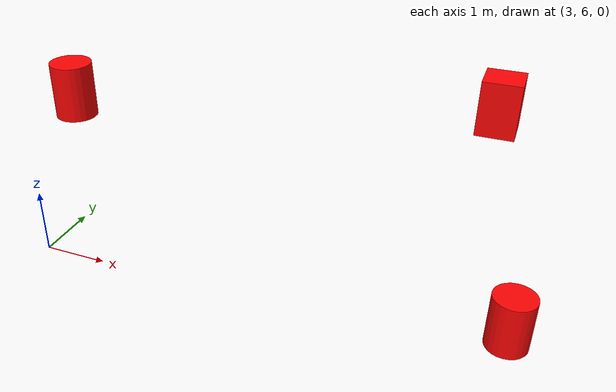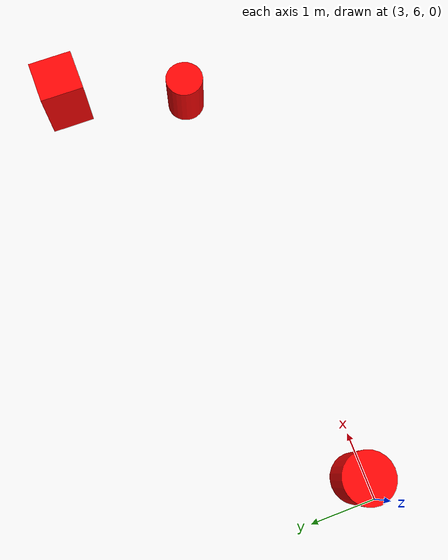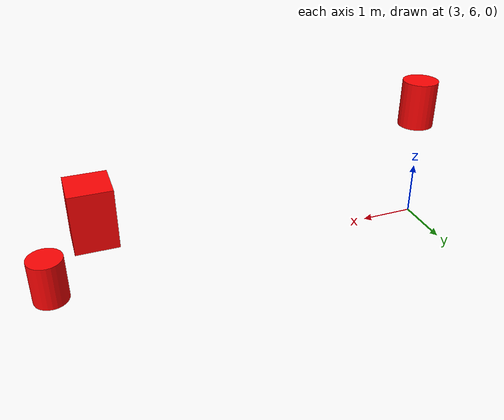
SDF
<sdf version="1.7">
 <world name="floor_3">
  <model name="moving_obstacle_4">
   <static>true</static>
   <pose>10.0204961 6.39675149 0.4 0 0 0</pose>
   <link name="obstacle">
    <collision name="body_collision">
     <geometry><cylinder><radius>0.3</radius><length>0.8</length></cylinder></geometry>
     <max_contacts>40</max_contacts>
     <surface>
      <friction><ode><mu>2</mu><mu2>2</mu2></ode></friction>
      <contact><ode><kp>1e7</kp><kd>1000</kd><max_vel>0.1</max_vel><min_depth>0.001</min_depth></ode></contact>
     </surface>
    </collision>
    <visual name="body_visual">
     <geometry><cylinder><radius>0.3</radius><length>0.8</length></cylinder></geometry>
     <material>
      <ambient>1 0.015 0.015 1</ambient>
      <diffuse>1 0.015 0.015 1</diffuse>
      <emissive>0.25 0 0 1</emissive>
     </material>
    </visual>
   </link>
   <plugin name="path_motion" filename="libmultimap_obstacle_motion.so">
    <speed>0.95</speed>
    <start_delay>0.75</start_delay>
    <waypoints>
     <point>10.0204961 6.39675149 0.4</point>
     <point>9.95402165 6.27666665 0.4</point>
     <point>9.88754721 6.1565818 0.4</point>
     <point>9.82107277 6.03649696 0.4</point>
     <point>9.75459833 5.91641212 0.4</point>
     <point>9.68812389 5.79632727 0.4</point>
     <point>9.62164944 5.67624243 0.4</point>
     <point>9.555175 5.55615759 0.4</point>
     <point>9.48870056 5.43607274 0.4</point>
     <point>9.42222612 5.3159879 0.4</point>
     <point>9.35575168 5.19590306 0.4</point>
     <point>9.28927723 5.07581821 0.4</point>
     <point>9.22280279 4.95573337 0.4</point>
     <point>9.15632835 4.83564852 0.4</point>
     <point>9.08985391 4.71556368 0.4</point>
     <point>9.02337947 4.59547884 0.4</point>
     <point>8.95690502 4.47539399 0.4</point>
     <point>8.89043058 4.35530915 0.4</point>
     <point>8.82395614 4.23522431 0.4</point>
     <point>8.7574817 4.11513946 0.4</point>
     <point>8.69100726 3.99505462 0.4</point>
     <point>8.62453282 3.87496977 0.4</point>
     <point>8.55805837 3.75488493 0.4</point>
     <point>8.49158393 3.63480009 0.4</point>
     <point>8.42510949 3.51471524 0.4</point>
     <point>8.35863505 3.3946304 0.4</point>
     <point>8.29216061 3.27454556 0.4</point>
     <point>8.22568616 3.15446071 0.4</point>
     <point>8.15921172 3.03437587 0.4</point>
     <point>8.09273728 2.91429103 0.4</point>
     <point>8.02626284 2.79420618 0.4</point>
     <point>7.9597884 2.67412134 0.4</point>
     <point>7.89331395 2.55403649 0.4</point>
     <point>7.82683951 2.43395165 0.4</point>
     <point>7.76036507 2.31386681 0.4</point>
     <point>7.69389063 2.19378196 0.4</point>
     <point>7.62741619 2.07369712 0.4</point>
     <point>7.56094174 1.95361228 0.4</point>
     <point>7.4944673 1.83352743 0.4</point>
     <point>7.42799286 1.71344259 0.4</point>
    </waypoints>
   </plugin>
  </model>
  <model name="moving_obstacle_6">
   <static>true</static>
   <pose>3.51678557 6.53911387 2.58947368 0 0 0</pose>
   <link name="obstacle">
    <collision name="body_collision">
     <geometry><cylinder><radius>0.3</radius><length>0.8</length></cylinder></geometry>
     <max_contacts>40</max_contacts>
     <surface>
      <friction><ode><mu>2</mu><mu2>2</mu2></ode></friction>
      <contact><ode><kp>1e7</kp><kd>1000</kd><max_vel>0.1</max_vel><min_depth>0.001</min_depth></ode></contact>
     </surface>
    </collision>
    <visual name="body_visual">
     <geometry><cylinder><radius>0.3</radius><length>0.8</length></cylinder></geometry>
     <material>
      <ambient>1 0.015 0.015 1</ambient>
      <diffuse>1 0.015 0.015 1</diffuse>
      <emissive>0.25 0 0 1</emissive>
     </material>
    </visual>
   </link>
   <plugin name="path_motion" filename="libmultimap_obstacle_motion.so">
    <speed>0.8</speed>
    <start_delay>0.25</start_delay>
    <waypoints>
     <point>3.51678557 6.53911387 2.58947368</point>
     <point>3.59160638 6.41994464 2.58947368</point>
     <point>3.66642719 6.30077541 2.58947368</point>
     <point>3.741248 6.18160618 2.58947368</point>
     <point>3.81606881 6.06243696 2.58947368</point>
     <point>3.89088962 5.94326773 2.58947368</point>
     <point>3.96571043 5.8240985 2.58947368</point>
     <point>4.04053124 5.70492927 2.58947368</point>
     <point>4.11535205 5.58576004 2.58947368</point>
     <point>4.19017287 5.46659081 2.58947368</point>
     <point>4.26499368 5.34742159 2.58947368</point>
     <point>4.33981449 5.22825236 2.58947368</point>
     <point>4.4146353 5.10908313 2.58947368</point>
     <point>4.48945611 4.9899139 2.58947368</point>
     <point>4.56427692 4.87074467 2.58947368</point>
     <point>4.63909773 4.75157545 2.58947368</point>
     <point>4.71391854 4.63240622 2.58947368</point>
     <point>4.78873935 4.51323699 2.58947368</point>
     <point>4.86356016 4.39406776 2.58947368</point>
     <point>4.93838098 4.27489853 2.58947368</point>
     <point>5.01320179 4.1557293 2.58947368</point>
     <point>5.0880226 4.03656008 2.58947368</point>
     <point>5.16284341 3.91739085 2.58947368</point>
     <point>5.23766422 3.79822162 2.58947368</point>
     <point>5.31248503 3.67905239 2.58947368</point>
     <point>5.38730584 3.55988316 2.58947368</point>
     <point>5.46212665 3.44071394 2.58947368</point>
     <point>5.53694746 3.32154471 2.58947368</point>
     <point>5.61176828 3.20237548 2.58947368</point>
     <point>5.68658909 3.08320625 2.58947368</point>
     <point>5.7614099 2.96403702 2.58947368</point>
     <point>5.83623071 2.8448678 2.58947368</point>
     <point>5.91105152 2.72569857 2.58947368</point>
     <point>5.98587233 2.60652934 2.58947368</point>
     <point>6.06069314 2.48736011 2.58947368</point>
     <point>6.13551395 2.36819088 2.58947368</point>
     <point>6.21033476 2.24902165 2.58947368</point>
     <point>6.28515557 2.12985243 2.58947368</point>
     <point>6.35997639 2.0106832 2.58947368</point>
     <point>6.4347972 1.89151397 2.58947368</point>
    </waypoints>
   </plugin>
  </model>
  <model name="moving_obstacle_7">
   <static>true</static>
   <pose>9.32204341 8.26052067 2.58947368 0 0 0</pose>
   <link name="obstacle">
    <collision name="body_collision">
     <geometry><box><size>0.55 0.55 0.8</size></box></geometry>
     <max_contacts>40</max_contacts>
     <surface>
      <friction><ode><mu>2</mu><mu2>2</mu2></ode></friction>
      <contact><ode><kp>1e7</kp><kd>1000</kd><max_vel>0.1</max_vel><min_depth>0.001</min_depth></ode></contact>
     </surface>
    </collision>
    <visual name="body_visual">
     <geometry><box><size>0.55 0.55 0.8</size></box></geometry>
     <material>
      <ambient>1 0.015 0.015 1</ambient>
      <diffuse>1 0.015 0.015 1</diffuse>
      <emissive>0.25 0 0 1</emissive>
     </material>
    </visual>
   </link>
   <plugin name="path_motion" filename="libmultimap_obstacle_motion.so">
    <speed>0.5</speed>
    <start_delay>0.5</start_delay>
    <waypoints>
     <point>9.32204341 8.26052067 2.58947368</point>
     <point>9.25539705 8.3028286 2.58947368</point>
     <point>9.18875069 8.34513652 2.58947368</point>
     <point>9.12210434 8.38744445 2.58947368</point>
     <point>9.05545798 8.42975238 2.58947368</point>
     <point>8.98881163 8.47206031 2.58947368</point>
     <point>8.92216527 8.51436824 2.58947368</point>
     <point>8.85551891 8.55667617 2.58947368</point>
     <point>8.78887256 8.5989841 2.58947368</point>
     <point>8.7222262 8.64129203 2.58947368</point>
     <point>8.65557985 8.68359996 2.58947368</point>
     <point>8.58893349 8.72590789 2.58947368</point>
     <point>8.52228714 8.76821582 2.58947368</point>
     <point>8.45564078 8.81052375 2.58947368</point>
     <point>8.38899442 8.85283167 2.58947368</point>
     <point>8.32234807 8.8951396 2.58947368</point>
     <point>8.25570171 8.93744753 2.58947368</point>
     <point>8.18905536 8.97975546 2.58947368</point>
     <point>8.122409 9.02206339 2.58947368</point>
     <point>8.05576264 9.06437132 2.58947368</point>
     <point>7.98911629 9.10667925 2.58947368</point>
     <point>7.92246993 9.14898718 2.58947368</point>
     <point>7.85582358 9.19129511 2.58947368</point>
     <point>7.78917722 9.23360304 2.58947368</point>
     <point>7.72253087 9.27591097 2.58947368</point>
     <point>7.65588451 9.3182189 2.58947368</point>
     <point>7.58923815 9.36052682 2.58947368</point>
     <point>7.5225918 9.40283475 2.58947368</point>
     <point>7.45594544 9.44514268 2.58947368</point>
     <point>7.38929909 9.48745061 2.58947368</point>
     <point>7.32265273 9.52975854 2.58947368</point>
     <point>7.25600637 9.57206647 2.58947368</point>
     <point>7.18936002 9.6143744 2.58947368</point>
     <point>7.12271366 9.65668233 2.58947368</point>
     <point>7.05606731 9.69899026 2.58947368</point>
     <point>6.98942095 9.74129819 2.58947368</point>
     <point>6.9227746 9.78360612 2.58947368</point>
     <point>6.85612824 9.82591405 2.58947368</point>
     <point>6.78948188 9.86822197 2.58947368</point>
     <point>6.72283553 9.9105299 2.58947368</point>
    </waypoints>
   </plugin>
  </model>
 </world>
</sdf>
